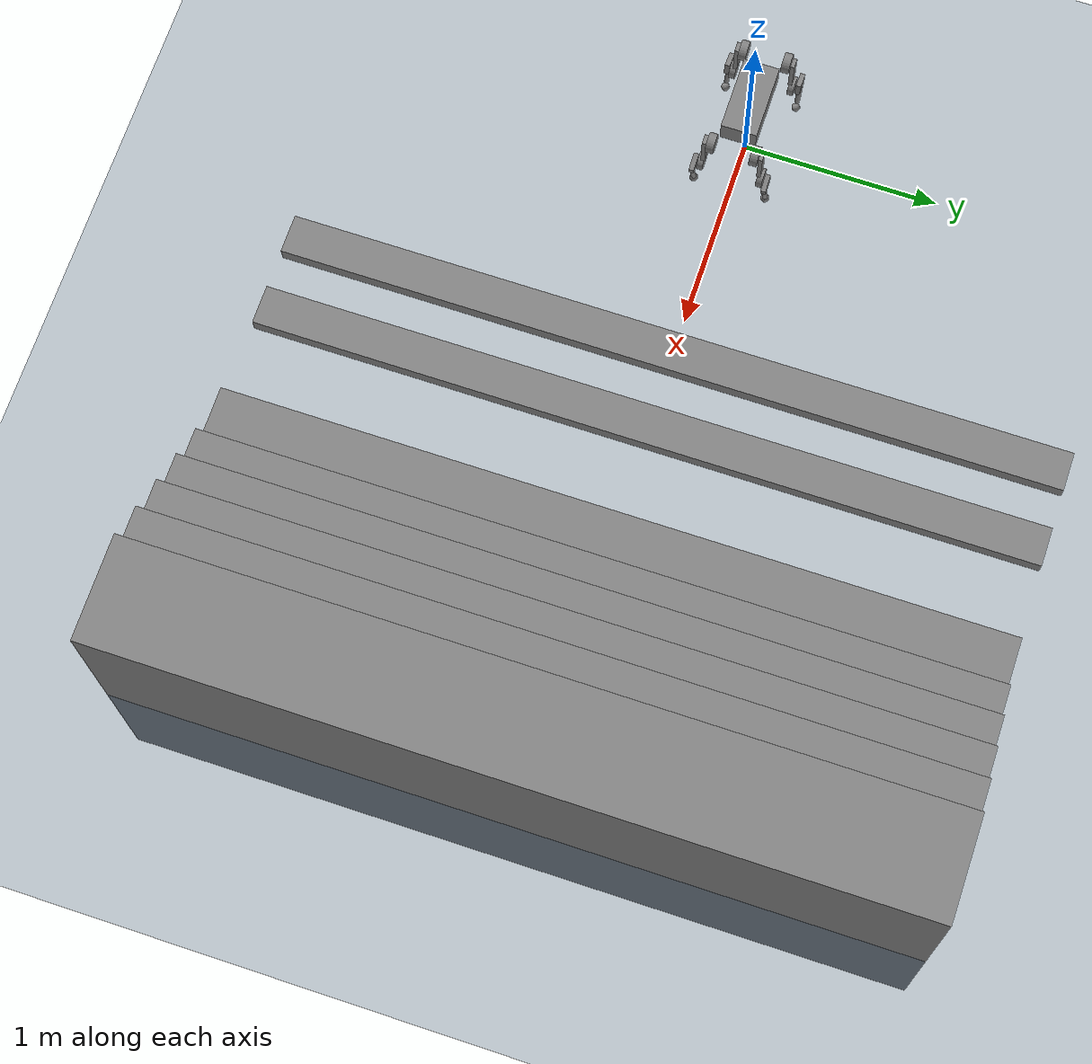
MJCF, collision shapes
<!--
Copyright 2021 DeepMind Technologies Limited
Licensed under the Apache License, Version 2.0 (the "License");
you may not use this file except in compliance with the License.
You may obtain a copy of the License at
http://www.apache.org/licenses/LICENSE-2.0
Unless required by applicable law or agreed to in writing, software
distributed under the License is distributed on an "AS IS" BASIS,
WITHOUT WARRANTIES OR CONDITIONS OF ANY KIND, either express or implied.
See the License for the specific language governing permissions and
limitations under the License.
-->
<mujoco>

    <include file="big_red_dog.xml"/>
    <statistic center="0 0 0.1" extent="0.8"/>

  <visual>
    <headlight diffuse="0.6 0.6 0.6" ambient="0.3 0.3 0.3" specular="0 0 0"/>
    <rgba haze="0.15 0.25 0.35 1"/>
    <global azimuth="-130" elevation="-20"/>
  </visual>

  <asset>
    <texture type="skybox" builtin="gradient" rgb1="0.3 0.5 0.7" rgb2="0 0 0" width="512" height="3072"/>
    <texture type="2d" name="groundplane" builtin="checker" mark="edge" rgb1="0.2 0.3 0.4" rgb2="0.1 0.2 0.3"
      markrgb="0.8 0.8 0.8" width="300" height="300"/>
    <material name="groundplane" texture="groundplane" texuniform="true" texrepeat="5 5" reflectance="0.2"/>
  </asset>

  <worldbody>
    <light pos="0 0 1.5" dir="0 0 -1" directional="true"/>
    <geom name="floor" size="0 0 0.05" type="plane" material="groundplane"/>

    <geom pos="1.2 0 0.04" type="box"  size="0.1 2 0.04" quat="1.0 0 0 0"/>
    <geom pos="1.6 0 0.04" type="box"  size="0.1 2 0.04" quat="1.0 0 0 0"/>

    <geom pos="2.3 0 0.02" type="box"  size="0.2 2 0.15" quat="1.0 0 0 0"/>
    <geom pos="2.6 0 0.02" type="box"  size="0.22 2 0.3" quat="1.0 0 0 0"/>
    <geom pos="2.8 0 0.02" type="box"  size="0.23 2 0.45" quat="1.0 0 0 0"/>
    <geom pos="3 0 0.02" type="box"  size="0.24 2 0.6" quat="1.0 0 0 0"/>
    <geom pos="3.2 0 0.02" type="box"  size="0.25 2 0.75" quat="1.0 0 0 0"/>
    <geom pos="3.4 0 0.02" type="box"  size="0.26 2 0.9" quat="1.0 0 0 0"/>
  </worldbody>
</mujoco>

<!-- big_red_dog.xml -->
<mujoco model="big_red_dog">
    <compiler angle="radian" meshdir="meshes" autolimits="true"/>

    <option cone="elliptic" impratio="100" />

    <default>
        <default class="big_red_dog">
            <geom friction="0.4" margin="0.001" condim="1"/>
            <joint axis="0 1 0" damping="0.1" armature="0.01" frictionloss="0.2"/>
            <motor ctrlrange="-23.7 23.7"/>
            <default class="hip">
                <joint range="-0.61 0.61"/>
                <position ctrlrange="-0.61 0.61" forcerange="-20 20"/>
            </default>
            <default class="thigh">
                <joint range="-1.5708 1.5708"/>
                <position ctrlrange="-1.5708 1.5708" forcerange="-20 20"/>
            </default>
            <default class="calf">
                <position ctrlrange="-3.14 3.14" forcerange="-20 20"/>
            </default>
            <default class="visual">
                <geom type="mesh" contype="0" conaffinity="0" group="2"/>
            </default>
            <default class="collision">
                <geom group="3"/>
                <default class="foot">
                <geom priority="1" condim="6"
                    friction="0.4 0.02 0.01"/>
                </default>
            </default>
        </default>
    </default>

    <asset>

        <material name="black" rgba="0 0 0 1" />
        <material name="red" rgba="1 0.149 0.149 1" />
        <material name="metal" rgba=".9 .95 .95 1" />
        <material name="dark_gray" rgba="0.1 0.1 0.1 1" />
        <material name="light_gray" rgba="0.15 0.15 0.15 1" />

        <mesh name="base_link" file="base_link.STL" />
        <mesh name="FL_hip_motor" file="FL_hip_motor.STL" />
        <mesh name="FL_hip_link" file="FL_hip_link.STL" />
        <mesh name="FL_thigh_motor" file="FL_thigh_motor.STL" />
        <mesh name="FL_thigh_link" file="FL_thigh_link.STL" />
        <mesh name="FL_calf_motor" file="FL_calf_motor.STL" />
        <mesh name="FL_calf_link" file="FL_calf_link.STL" />
        <mesh name="FR_hip_motor" file="FR_hip_motor.STL" />
        <mesh name="FR_hip_link" file="FR_hip_link.STL" />
        <mesh name="FR_thigh_motor" file="FR_thigh_motor.STL" />
        <mesh name="FR_thigh_link" file="FR_thigh_link.STL" />
        <mesh name="FR_calf_motor" file="FR_calf_motor.STL" />
        <mesh name="FR_calf_link" file="FR_calf_link.STL" />
        <mesh name="RL_hip_motor" file="RL_hip_motor.STL" />
        <mesh name="RL_hip_link" file="RL_hip_link.STL" />
        <mesh name="RL_thigh_motor" file="RL_thigh_motor.STL" />
        <mesh name="RL_thigh_link" file="RL_thigh_link.STL" />
        <mesh name="RL_calf_motor" file="RL_calf_motor.STL" />
        <mesh name="RL_calf_link" file="RL_calf_link.STL" />
        <mesh name="RR_hip_motor" file="RR_hip_motor.STL" />
        <mesh name="RR_hip_link" file="RR_hip_link.STL" />
        <mesh name="RR_thigh_motor" file="RR_thigh_motor.STL" />
        <mesh name="RR_thigh_link" file="RR_thigh_link.STL" />
        <mesh name="RR_calf_motor" file="RR_calf_motor.STL" />
        <mesh name="RR_calf_link" file="RR_calf_link.STL" />
        <mesh name="base_up" file="base_up.STL" />
        <mesh name="switch" file="switch.STL" />
    </asset>
    <worldbody>
        <body name="base_link" pos="0 0 0.5" childclass="big_red_dog">
            <inertial pos="0.000561536 -1.45402e-05 -0.0238998" quat="0.000157389 0.707722 8.11149e-05 0.706491" mass="6.09" diaginertia="0.158015 0.143572 0.0283486" />
            <freejoint />
            <geom mesh="base_link" material="red" class="visual"/>
            <geom mesh="base_up" material="dark_gray" class="visual"/>
            <geom mesh="switch" material="metal" class="visual"/>
            <geom pos="0.175 0.0655 -0.021" mesh="FL_hip_motor" material="black" class="visual"/>
            <geom pos="0.175 -0.0655 -0.021" mesh="FR_hip_motor" material="black" class="visual"/>
            <geom pos="-0.175 0.0655 -0.021" mesh="RL_hip_motor" material="black" class="visual"/>
            <geom pos="-0.175 -0.0655 -0.021" mesh="RR_hip_motor" material="black" class="visual"/>
            <geom size="0.19 0.09 0.06" pos="0 0 -0.02" type="box" class="collision"/>
            <site name="imu" pos="0 0 0" />
            <body name="FL_hip_link" pos="0.206488 0.0655 -0.021">
                <inertial pos="0.0543486 0.0443048 4.29565e-05" quat="0.425897 0.43261 0.560175 0.563618" mass="0.69" diaginertia="0.000956635 0.000694228 0.000539661" />
                <joint name="FL_hip_joint" axis="-1 0 0" class="hip" />
                <geom mesh="FL_hip_link" material="light_gray" class="visual"/>
                <geom mesh="FL_thigh_motor" pos="0.058719 0.034867 0" material="black" class="visual"/>
                <geom size="0.05 0.02" pos="0.058719 0.044867 0" quat="0.707388 0.706825 0 0" type="cylinder" class="collision"/>
                <body name="FL_thigh_link" pos="0.058719 0.066367 0">
                    <inertial pos="-7.78345e-05 0.0173212 -0.183562" quat="0.706504 0.0224744 -0.0239676 0.706946" mass="0.725" diaginertia="0.00317276 0.00286123 0.000426478" />
                    <joint name="FL_thigh_joint" axis="0 -1 0" class="thigh" />
                    <geom mesh="FL_thigh_link" material="dark_gray" class="visual"/>
                    <geom mesh="FL_calf_motor" pos="0 0.005 -0.21" material="black" class="visual"/>
                    <geom size="0.025 0.01 0.09" pos="0 0.011 -0.07" type="box" class="collision" />
                    <geom size="0.048 0.015" pos="0 0.02 -0.21" quat="0.707388 0.706825 0 0" type="cylinder" class="collision" />
                    <body name="FL_calf_link" pos="0 0.0365 -0.21">
                        <inertial pos="0.020263 0.0160878 -0.108108" quat="0.643021 0.0671604 0.0435813 0.761652" mass="0.24506" diaginertia="0.00187578 0.00181431 9.3273e-05" />
                        <joint name="FL_calf_joint" axis="0 -1 0"/>
                        <geom mesh="FL_calf_link" material="dark_gray" class="visual"/>
                        <geom size="0.044 0.0125 0.03" pos="0.024 0.016 -0.0064" quat="0.991445 0 0.130526 0" type="box" class="collision" />
                        <geom size="0.0125 0.0675" pos="0.029 0.0175 -0.108" quat="0.991445 0 0.130526 0" type="cylinder" class="collision"/>
                        <geom size="0.021" pos="0 0.0175 -0.21" type="sphere" class="foot"/>
                    </body>
                </body>
            </body>
            <body name="FR_hip_link" pos="0.2065 -0.0655 -0.021">
                <inertial pos="0.0543388 -0.0445207 4.29565e-05" quat="0.564121 0.560681 0.431981 0.425203" mass="0.69" diaginertia="0.000957012 0.000695892 0.000540947" />
                <joint name="FR_hip_joint" pos="0 0 0" axis="-1 0 0" />
                <geom mesh="FR_hip_link" material="light_gray" class="visual"/>
                <geom mesh="FR_thigh_motor" pos="0.058707 -0.035133 0" material="black" class="visual"/>
                <geom size="0.05 0.02" pos="0.058707 -0.045133 0" quat="0.707388 0.706825 0 0" type="cylinder" class="collision" />
                <body name="FR_thigh_link" pos="0.058707 -0.066633 0">
                    <inertial pos="-7.78345e-05 -0.0173212 -0.183562" quat="0.706946 -0.0239676 0.0224744 0.706504" mass="0.725" diaginertia="0.00317276 0.00286123 0.000426478" />
                    <joint name="FR_thigh_joint" pos="0 0 0" axis="0 1 0" />
                    <geom mesh="FR_thigh_link" material="dark_gray" class="visual"/>
                    <geom mesh="FR_calf_motor" pos="0 -0.005 -0.21" material="black" class="visual"/>
                    <geom size="0.025 0.01 0.09" pos="0 -0.011 -0.07" type="box" class="collision" />
                    <geom size="0.048 0.015" pos="0 -0.02 -0.21" quat="0.707388 0.706825 0 0" type="cylinder" class="collision" />
                    <body name="FR_calf_link" pos="0 -0.0365 -0.21">
                        <inertial pos="0.020263 -0.0160878 -0.108108" quat="0.719006 -0.0179301 -0.0032925 0.694765" mass="0.24506" diaginertia="0.0018742 0.00177413 0.000135029" />
                        <joint name="FR_calf_joint" axis="0 1 0" />
                        <geom mesh="FR_calf_link" material="dark_gray" class="visual"/>
                        <geom size="0.044 0.0125 0.03" pos="0.024 -0.016 -0.0064" quat="0.991445 0 0.130526 0" type="box" class="collision" />
                        <geom size="0.0125 0.0675" pos="0.029 -0.0175 -0.108" quat="0.991445 0 0.130526 0" type="cylinder" class="collision" />
                        <geom size="0.021" pos="0 -0.0175 -0.21" type="sphere" class="foot"/>
                    </body>
                </body>
            </body>
            <body name="RL_hip_link" pos="-0.2065 0.0655 -0.021">
                <inertial pos="-0.0543583 0.0443048 4.29565e-05" quat="0.560185 0.563626 0.425885 0.432597" mass="0.69" diaginertia="0.000956709 0.000694287 0.000539645" />
                <joint name="RL_hip_joint" pos="0 0 0" axis="1 0 0" />
                <geom mesh="RL_hip_link" material="light_gray" class="visual"/>
                <geom mesh="RL_thigh_motor" pos="-0.058731 0.034867 0" material="black" class="visual"/>
                <geom size="0.05 0.02" pos="-0.058731 0.044867 0" quat="0.707388 0.706825 0 0" type="cylinder" class="collision" />
                <body name="RL_thigh_link" pos="-0.058731 0.066367 0">
                    <inertial pos="0.000102997 0.0173212 -0.183562" quat="0.706936 0.0239333 -0.0225088 0.706514" mass="0.725" diaginertia="0.00317276 0.00286123 0.000426477" />
                    <joint name="RL_thigh_joint" pos="0 0 0" axis="0 -1 0" />
                    <geom mesh="RL_thigh_link" material="dark_gray" class="visual"/>
                    <geom mesh="RL_calf_motor" pos="0 0.005 -0.21" material="black" class="visual"/>
                    <geom size="0.025 0.01 0.09" pos="0 0.011 -0.07" type="box" class="collision" />
                    <geom size="0.048 0.015" pos="0 0.02 -0.21" quat="0.707388 0.706825 0 0" type="cylinder" class="collision" />
                    <body name="RL_calf_link" pos="0 0.0365 -0.21">
                        <inertial pos="-0.0202835 0.0160878 -0.108103" quat="0.761312 -0.0434625 -0.0669566 0.643453" mass="0.24506" diaginertia="0.00187585 0.00181413 9.35566e-05" />
                        <joint name="RL_calf_joint" axis="0 -1 0" />
                        <geom mesh="RL_calf_link" material="dark_gray" class="visual"/>
                        <geom size="0.044 0.0125 0.03" pos="-0.024 0.016 -0.0064" quat="0.991445 0 -0.130526 0" type="box" class="collision" />
                        <geom size="0.0125 0.0675" pos="-0.029 0.0175 -0.108" quat="0.991445 0 -0.130526 0" type="cylinder" class="collision" />
                        <geom size="0.021" pos="0 0.0175 -0.21" type="sphere" class="foot"/>
                    </body>
                </body>
            </body>
            <body name="RR_hip_link" pos="-0.205 -0.0655 -0.021">
                <inertial pos="-0.0558583 -0.0444128 4.29565e-05" quat="0.432277 0.425532 0.563882 0.560443" mass="0.69" diaginertia="0.000956935 0.000695146 0.000540279" />
                <joint name="RR_hip_joint" pos="0 0 0" axis="1 0 0" />
                <geom mesh="RR_hip_link" material="light_gray" class="visual"/>
                <geom mesh="RR_thigh_motor" pos="-0.060231 -0.035 0" material="black" class="visual"/>
                <geom size="0.05 0.02" pos="-0.060231 -0.045 0" quat="0.707388 0.706825 0 0" type="cylinder" class="collision" />
                <body name="RR_thigh_link" pos="-0.060231 -0.0665 0">
                    <inertial pos="7.78345e-05 -0.0173212 -0.183562" quat="0.706504 -0.0224744 0.0239676 0.706946" mass="0.725" diaginertia="0.00317276 0.00286123 0.000426478" />
                    <joint name="RR_thigh_joint" pos="0 0 0" axis="0 1 0" />
                    <geom mesh="RR_thigh_link" material="dark_gray" class="visual"/>
                    <geom mesh="RR_calf_motor" pos="0 -0.005 -0.21" material="black" class="visual"/>
                    <geom size="0.025 0.01 0.09" pos="0 -0.011 -0.07" type="box" class="collision"/>
                    <geom size="0.048 0.015" pos="0 -0.02 -0.21" quat="0.707388 0.706825 0 0" type="cylinder" class="collision" />
                    <body name="RR_calf_link" pos="0 -0.0365 -0.21">
                        <inertial pos="-0.020263 -0.0160878 -0.108108" quat="0.643021 -0.0671604 -0.0435813 0.761652" mass="0.24506" diaginertia="0.00187578 0.00181431 9.3273e-05" />
                        <joint name="RR_calf_joint" axis="0 1 0" />
                        <geom mesh="RR_calf_link" material="dark_gray" class="visual" />
                        <geom size="0.044 0.0125 0.03" pos="-0.024 -0.016 -0.0064" quat="0.991445 0 -0.130526 0" type="box" class="collision" />
                        <geom size="0.0125 0.0675" pos="-0.029 -0.0175 -0.108" quat="0.991445 0 -0.130526 0" type="cylinder" class="collision"/>
                        <geom size="0.021" pos="0 -0.0175 -0.21" type="sphere" class="foot"/>
                    </body>
                </body>
            </body>
        </body>
    </worldbody>

    <actuator>
        <position class="hip" name="FR_hip" joint="FR_hip_joint" kp="15" kv="0.5"/>
        <position class="thigh" name="FR_thigh" joint="FR_thigh_joint" kp="15" kv="0.5"/>
        <position class="calf" name="FR_calf" joint="FR_calf_joint" kp="15" kv="0.5"/>
        <position class="hip" name="FL_hip" joint="FL_hip_joint" kp="15" kv="0.5"/>
        <position class="thigh" name="FL_thigh" joint="FL_thigh_joint" kp="15" kv="0.5"/>
        <position class="calf" name="FL_calf" joint="FL_calf_joint" kp="15" kv="0.5"/>
        <position class="hip" name="RR_hip" joint="RR_hip_joint" kp="15" kv="0.5"/>
        <position class="thigh" name="RR_thigh" joint="RR_thigh_joint" kp="15" kv="0.5"/>
        <position class="calf" name="RR_calf" joint="RR_calf_joint" kp="15" kv="0.5"/>
        <position class="hip" name="RL_hip" joint="RL_hip_joint" kp="15" kv="0.5"/>
        <position class="thigh" name="RL_thigh" joint="RL_thigh_joint" kp="15" kv="0.5"/>
        <position class="calf" name="RL_calf" joint="RL_calf_joint" kp="15" kv="0.5"/>
    </actuator>

    <sensor>
        <jointpos name="FR_hip_pos" joint="FR_hip_joint" />
        <jointpos name="FR_thigh_pos" joint="FR_thigh_joint" />
        <jointpos name="FR_calf_pos" joint="FR_calf_joint" />
        <jointpos name="FL_hip_pos" joint="FL_hip_joint" />
        <jointpos name="FL_thigh_pos" joint="FL_thigh_joint" />
        <jointpos name="FL_calf_pos" joint="FL_calf_joint" />
        <jointpos name="RR_hip_pos" joint="RR_hip_joint" />
        <jointpos name="RR_thigh_pos" joint="RR_thigh_joint" />
        <jointpos name="RR_calf_pos" joint="RR_calf_joint" />
        <jointpos name="RL_hip_pos" joint="RL_hip_joint" />
        <jointpos name="RL_thigh_pos" joint="RL_thigh_joint" />
        <jointpos name="RL_calf_pos" joint="RL_calf_joint" />

        <jointvel name="FR_hip_vel" joint="FR_hip_joint" />
        <jointvel name="FR_thigh_vel" joint="FR_thigh_joint" />
        <jointvel name="FR_calf_vel" joint="FR_calf_joint" />
        <jointvel name="FL_hip_vel" joint="FL_hip_joint" />
        <jointvel name="FL_thigh_vel" joint="FL_thigh_joint" />
        <jointvel name="FL_calf_vel" joint="FL_calf_joint" />
        <jointvel name="RR_hip_vel" joint="RR_hip_joint" />
        <jointvel name="RR_thigh_vel" joint="RR_thigh_joint" />
        <jointvel name="RR_calf_vel" joint="RR_calf_joint" />
        <jointvel name="RL_hip_vel" joint="RL_hip_joint" />
        <jointvel name="RL_thigh_vel" joint="RL_thigh_joint" />
        <jointvel name="RL_calf_vel" joint="RL_calf_joint" />

        <jointactuatorfrc name="FR_hip_torque" joint="FR_hip_joint" noise="0.01" />
        <jointactuatorfrc name="FR_thigh_torque" joint="FR_thigh_joint" noise="0.01" />
        <jointactuatorfrc name="FR_calf_torque" joint="FR_calf_joint" noise="0.01" />
        <jointactuatorfrc name="FL_hip_torque" joint="FL_hip_joint" noise="0.01" />
        <jointactuatorfrc name="FL_thigh_torque" joint="FL_thigh_joint" noise="0.01" />
        <jointactuatorfrc name="FL_calf_torque" joint="FL_calf_joint" noise="0.01" />
        <jointactuatorfrc name="RR_hip_torque" joint="RR_hip_joint" noise="0.01" />
        <jointactuatorfrc name="RR_thigh_torque" joint="RR_thigh_joint" noise="0.01" />
        <jointactuatorfrc name="RR_calf_torque" joint="RR_calf_joint" noise="0.01" />
        <jointactuatorfrc name="RL_hip_torque" joint="RL_hip_joint" noise="0.01" />
        <jointactuatorfrc name="RL_thigh_torque" joint="RL_thigh_joint" noise="0.01" />
        <jointactuatorfrc name="RL_calf_torque" joint="RL_calf_joint" noise="0.01" />

        <framequat name="imu_quat" objtype="site" objname="imu" />
        <gyro name="imu_gyro" site="imu" />
        <accelerometer name="imu_acc" site="imu" />

        <framepos name="frame_pos" objtype="site" objname="imu" />
        <framelinvel name="frame_vel" objtype="site" objname="imu" />
    </sensor>

</mujoco>
